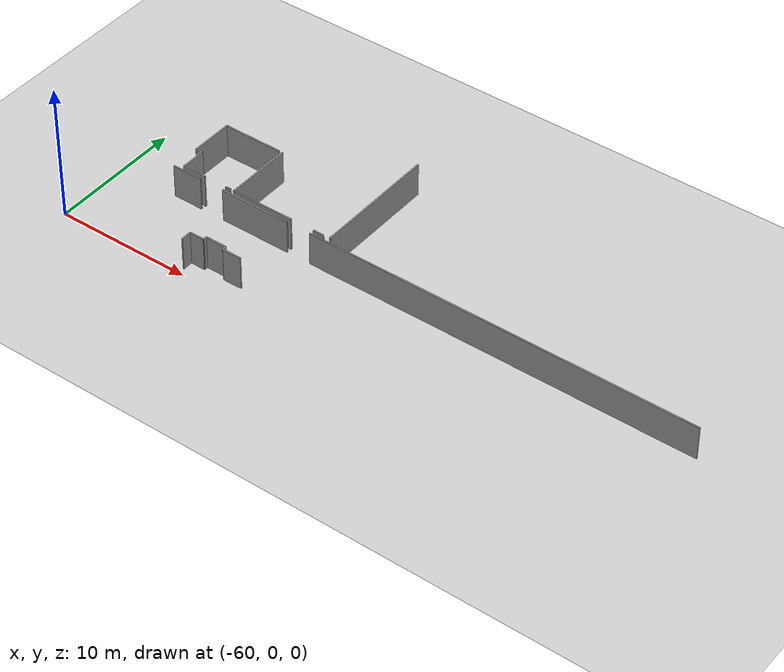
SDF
<sdf version="1.6">
 <world name="default">
  <model name="ground_plane">
   <static>1</static>
   <link name="link">
    <collision name="collision">
     <geometry><plane><normal>0 0 1</normal><size>100 100</size></plane></geometry>
     <surface><friction><ode><mu>100</mu><mu2>50</mu2></ode></friction></surface>
    </collision>
    <visual name="visual">
     <cast_shadows>0</cast_shadows>
     <geometry><plane><normal>0 0 1</normal><size>100 100</size></plane></geometry>
     <material>
      <script><uri>file://media/materials/scripts/gazebo.material</uri><name>Gazebo/Grey</name></script>
     </material>
    </visual>
   </link>
  </model>
  <model name="50057022">
   <static>1</static>
   <link name="Wall_7">
    <collision name="Wall_7_Collision">
     <geometry><box><size>1.8363762176 0.1 2.5</size></box></geometry>
     <pose>0.918188108799 0 1.25 0 0 0</pose>
    </collision>
    <visual name="Wall_7_Visual">
     <pose>0.918188108799 0 1.25 0 0 0</pose>
     <geometry><box><size>1.8363762176 0.1 2.5</size></box></geometry>
     <material>
      <script><uri>file://media/materials/scripts/gazebo.material</uri><name>Gazebo/Grey</name></script>
      <ambient>1 1 1 1</ambient>
     </material>
    </visual>
    <pose>1.55946234352 -17.7079135268 0 0 0 1.57079632679</pose>
   </link>
   <link name="Wall_8">
    <collision name="Wall_8_Collision">
     <geometry><box><size>0.510104504888 0.1 2.5</size></box></geometry>
     <pose>0.255052252444 0 1.25 0 0 0</pose>
    </collision>
    <visual name="Wall_8_Visual">
     <pose>0.255052252444 0 1.25 0 0 0</pose>
     <geometry><box><size>0.510104504888 0.1 2.5</size></box></geometry>
     <material>
      <script><uri>file://media/materials/scripts/gazebo.material</uri><name>Gazebo/Grey</name></script>
      <ambient>1 1 1 1</ambient>
     </material>
    </visual>
    <pose>1.55946234352 -15.8715373092 0 0 0 3.14159265359</pose>
   </link>
   <link name="Wall_9">
    <collision name="Wall_9_Collision">
     <geometry><box><size>3.11892468703 0.1 2.5</size></box></geometry>
     <pose>1.55946234352 0 1.25 0 0 0</pose>
    </collision>
    <visual name="Wall_9_Visual">
     <pose>1.55946234352 0 1.25 0 0 0</pose>
     <geometry><box><size>3.11892468703 0.1 2.5</size></box></geometry>
     <material>
      <script><uri>file://media/materials/scripts/gazebo.material</uri><name>Gazebo/Grey</name></script>
      <ambient>1 1 1 1</ambient>
     </material>
    </visual>
    <pose>1.04935783863 -15.8715373092 0 0 0 1.57079632679</pose>
   </link>
   <link name="Wall_10">
    <collision name="Wall_10_Collision">
     <geometry><box><size>4.38689874204 0.1 2.5</size></box></geometry>
     <pose>2.19344937102 0 1.25 0 0 0</pose>
    </collision>
    <visual name="Wall_10_Visual">
     <pose>2.19344937102 0 1.25 0 0 0</pose>
     <geometry><box><size>4.38689874204 0.1 2.5</size></box></geometry>
     <material>
      <script><uri>file://media/materials/scripts/gazebo.material</uri><name>Gazebo/Grey</name></script>
      <ambient>1 1 1 1</ambient>
     </material>
    </visual>
    <pose>1.04935783863 -12.7526126222 0 0 0 0.0</pose>
   </link>
   <link name="Wall_12">
    <collision name="Wall_12_Collision">
     <geometry><box><size>0.393509189485 0.1 2.5</size></box></geometry>
     <pose>0.196754594743 0 1.25 0 0 0</pose>
    </collision>
    <visual name="Wall_12_Visual">
     <pose>0.196754594743 0 1.25 0 0 0</pose>
     <geometry><box><size>0.393509189485 0.1 2.5</size></box></geometry>
     <material>
      <script><uri>file://media/materials/scripts/gazebo.material</uri><name>Gazebo/Grey</name></script>
      <ambient>1 1 1 1</ambient>
     </material>
    </visual>
    <pose>5.43625658066 -17.6933391124 0 0 0 3.14159265359</pose>
   </link>
   <link name="Wall_13">
    <collision name="Wall_13_Collision">
     <geometry><box><size>1.7635643693 0.1 2.5</size></box></geometry>
     <pose>0.881782184648 0 1.25 0 0 0</pose>
    </collision>
    <visual name="Wall_13_Visual">
     <pose>0.881782184648 0 1.25 0 0 0</pose>
     <geometry><box><size>1.7635643693 0.1 2.5</size></box></geometry>
     <material>
      <script><uri>file://media/materials/scripts/gazebo.material</uri><name>Gazebo/Grey</name></script>
      <ambient>1 1 1 1</ambient>
     </material>
    </visual>
    <pose>3.32296648899 -17.6933391124 0 0 0 -3.13332837893</pose>
   </link>
   <link name="Wall_14">
    <collision name="Wall_14_Collision">
     <geometry><box><size>4.96417228732 0.1 2.5</size></box></geometry>
     <pose>2.48208614366 0 1.25 0 0 0</pose>
    </collision>
    <visual name="Wall_14_Visual">
     <pose>2.48208614366 0 1.25 0 0 0</pose>
     <geometry><box><size>4.96417228732 0.1 2.5</size></box></geometry>
     <material>
      <script><uri>file://media/materials/scripts/gazebo.material</uri><name>Gazebo/Grey</name></script>
      <ambient>1 1 1 1</ambient>
     </material>
    </visual>
    <pose>5.71608533763 -17.6939727826 0 0 0 1.57079632679</pose>
   </link>
   <link name="Wall_22">
    <collision name="Wall_22_Collision">
     <geometry><box><size>0.828840611669 0.1 2.5</size></box></geometry>
     <pose>0.414420305835 0 1.25 0 0 0</pose>
    </collision>
    <visual name="Wall_22_Visual">
     <pose>0.414420305835 0 1.25 0 0 0</pose>
     <geometry><box><size>0.828840611669 0.1 2.5</size></box></geometry>
     <material>
      <script><uri>file://media/materials/scripts/gazebo.material</uri><name>Gazebo/Grey</name></script>
      <ambient>1 1 1 1</ambient>
     </material>
    </visual>
    <pose>12.9827616361 -17.6881430168 0 0 0 3.14159265359</pose>
   </link>
   <link name="Wall_23">
    <collision name="Wall_23_Collision">
     <geometry><box><size>4.6745886446 0.1 2.5</size></box></geometry>
     <pose>2.3372943223 0 1.25 0 0 0</pose>
    </collision>
    <visual name="Wall_23_Visual">
     <pose>2.3372943223 0 1.25 0 0 0</pose>
     <geometry><box><size>4.6745886446 0.1 2.5</size></box></geometry>
     <material>
      <script><uri>file://media/materials/scripts/gazebo.material</uri><name>Gazebo/Grey</name></script>
      <ambient>1 1 1 1</ambient>
     </material>
    </visual>
    <pose>10.390670347 -17.6881430168 0 0 0 -3.14034553481</pose>
   </link>
   <link name="Wall_24">
    <collision name="Wall_24_Collision">
     <geometry><box><size>9.23168756511 0.1 2.5</size></box></geometry>
     <pose>4.61584378255 0 1.25 0 0 0</pose>
    </collision>
    <visual name="Wall_24_Visual">
     <pose>4.61584378255 0 1.25 0 0 0</pose>
     <geometry><box><size>9.23168756511 0.1 2.5</size></box></geometry>
     <material>
      <script><uri>file://media/materials/scripts/gazebo.material</uri><name>Gazebo/Grey</name></script>
      <ambient>1 1 1 1</ambient>
     </material>
    </visual>
    <pose>13.4549726635 -17.6284512847 0 0 0 1.57079632679</pose>
   </link>
   <link name="Wall_601">
    <collision name="Wall_601_Collision">
     <geometry><box><size>2.23584190689 0.1 2.5</size></box></geometry>
     <pose>1.11792095345 0 1.25 0 0 0</pose>
    </collision>
    <visual name="Wall_601_Visual">
     <pose>1.11792095345 0 1.25 0 0 0</pose>
     <geometry><box><size>2.23584190689 0.1 2.5</size></box></geometry>
     <material>
      <script><uri>file://media/materials/scripts/gazebo.material</uri><name>Gazebo/Grey</name></script>
      <ambient>1 1 1 1</ambient>
     </material>
    </visual>
    <pose>1.01323863766 -18.054404388 0 0 0 0.0</pose>
   </link>
   <link name="Wall_602">
    <collision name="Wall_602_Collision">
     <geometry><box><size>5.27948657506 0.1 2.5</size></box></geometry>
     <pose>2.63974328753 0 1.25 0 0 0</pose>
    </collision>
    <visual name="Wall_602_Visual">
     <pose>2.63974328753 0 1.25 0 0 0</pose>
     <geometry><box><size>5.27948657506 0.1 2.5</size></box></geometry>
     <material>
      <script><uri>file://media/materials/scripts/gazebo.material</uri><name>Gazebo/Grey</name></script>
      <ambient>1 1 1 1</ambient>
     </material>
    </visual>
    <pose>5.07848639003 -18.054404388 0 0 0 0.0</pose>
   </link>
   <link name="Wall_603">
    <collision name="Wall_603_Collision">
     <geometry><box><size>28.8281917334 0.1 2.5</size></box></geometry>
     <pose>14.4140958667 0 1.25 0 0 0</pose>
    </collision>
    <visual name="Wall_603_Visual">
     <pose>14.4140958667 0 1.25 0 0 0</pose>
     <geometry><box><size>28.8281917334 0.1 2.5</size></box></geometry>
     <material>
      <script><uri>file://media/materials/scripts/gazebo.material</uri><name>Gazebo/Grey</name></script>
      <ambient>1 1 1 1</ambient>
     </material>
    </visual>
    <pose>12.1550616308 -18.054404388 0 0 0 0.0</pose>
   </link>
   <link name="Wall_660">
    <collision name="Wall_660_Collision">
     <geometry><box><size>1.40003092311 0.1 2.5</size></box></geometry>
     <pose>0.700015461553 0 1.25 0 0 0</pose>
    </collision>
    <visual name="Wall_660_Visual">
     <pose>0.700015461553 0 1.25 0 0 0</pose>
     <geometry><box><size>1.40003092311 0.1 2.5</size></box></geometry>
     <material>
      <script><uri>file://media/materials/scripts/gazebo.material</uri><name>Gazebo/Grey</name></script>
      <ambient>1 1 1 1</ambient>
     </material>
    </visual>
    <pose>10.2265497672 -22.5468725841 0 0 0 3.14159265359</pose>
   </link>
   <link name="Wall_661">
    <collision name="Wall_661_Collision">
     <geometry><box><size>0.283630778122 0.1 2.5</size></box></geometry>
     <pose>0.141815389061 0 1.25 0 0 0</pose>
    </collision>
    <visual name="Wall_661_Visual">
     <pose>0.141815389061 0 1.25 0 0 0</pose>
     <geometry><box><size>0.283630778122 0.1 2.5</size></box></geometry>
     <material>
      <script><uri>file://media/materials/scripts/gazebo.material</uri><name>Gazebo/Grey</name></script>
      <ambient>1 1 1 1</ambient>
     </material>
    </visual>
    <pose>8.82651884408 -22.5468725841 0 0 0 1.57079632679</pose>
   </link>
   <link name="Wall_662">
    <collision name="Wall_662_Collision">
     <geometry><box><size>1.59152605525 0.1 2.5</size></box></geometry>
     <pose>0.795763027625 0 1.25 0 0 0</pose>
    </collision>
    <visual name="Wall_662_Visual">
     <pose>0.795763027625 0 1.25 0 0 0</pose>
     <geometry><box><size>1.59152605525 0.1 2.5</size></box></geometry>
     <material>
      <script><uri>file://media/materials/scripts/gazebo.material</uri><name>Gazebo/Grey</name></script>
      <ambient>1 1 1 1</ambient>
     </material>
    </visual>
    <pose>8.82651884408 -22.263241806 0 0 0 3.14159265359</pose>
   </link>
   <link name="Wall_663">
    <collision name="Wall_663_Collision">
     <geometry><box><size>0.274886129466 0.1 2.5</size></box></geometry>
     <pose>0.137443064733 0 1.25 0 0 0</pose>
    </collision>
    <visual name="Wall_663_Visual">
     <pose>0.137443064733 0 1.25 0 0 0</pose>
     <geometry><box><size>0.274886129466 0.1 2.5</size></box></geometry>
     <material>
      <script><uri>file://media/materials/scripts/gazebo.material</uri><name>Gazebo/Grey</name></script>
      <ambient>1 1 1 1</ambient>
     </material>
    </visual>
    <pose>7.23499278883 -22.263241806 0 0 0 -1.57079632679</pose>
   </link>
   <link name="Wall_664">
    <collision name="Wall_664_Collision">
     <geometry><box><size>1.09168700748 0.1 2.5</size></box></geometry>
     <pose>0.54584350374 0 1.25 0 0 0</pose>
    </collision>
    <visual name="Wall_664_Visual">
     <pose>0.54584350374 0 1.25 0 0 0</pose>
     <geometry><box><size>1.09168700748 0.1 2.5</size></box></geometry>
     <material>
      <script><uri>file://media/materials/scripts/gazebo.material</uri><name>Gazebo/Grey</name></script>
      <ambient>1 1 1 1</ambient>
     </material>
    </visual>
    <pose>7.23499278883 -22.5381279355 0 0 0 3.14159265359</pose>
   </link>
   <link name="Wall_665">
    <collision name="Wall_665_Collision">
     <geometry><box><size>0.783343091854 0.1 2.5</size></box></geometry>
     <pose>0.391671545927 0 1.25 0 0 0</pose>
    </collision>
    <visual name="Wall_665_Visual">
     <pose>0.391671545927 0 1.25 0 0 0</pose>
     <geometry><box><size>0.783343091854 0.1 2.5</size></box></geometry>
     <material>
      <script><uri>file://media/materials/scripts/gazebo.material</uri><name>Gazebo/Grey</name></script>
      <ambient>1 1 1 1</ambient>
     </material>
    </visual>
    <pose>6.14330578135 -22.5381279355 0 0 0 -1.57079632679</pose>
   </link>
   <pose>-56.55 23.8342557037 0 0 0 0</pose>
  </model>
 </world>
</sdf>
